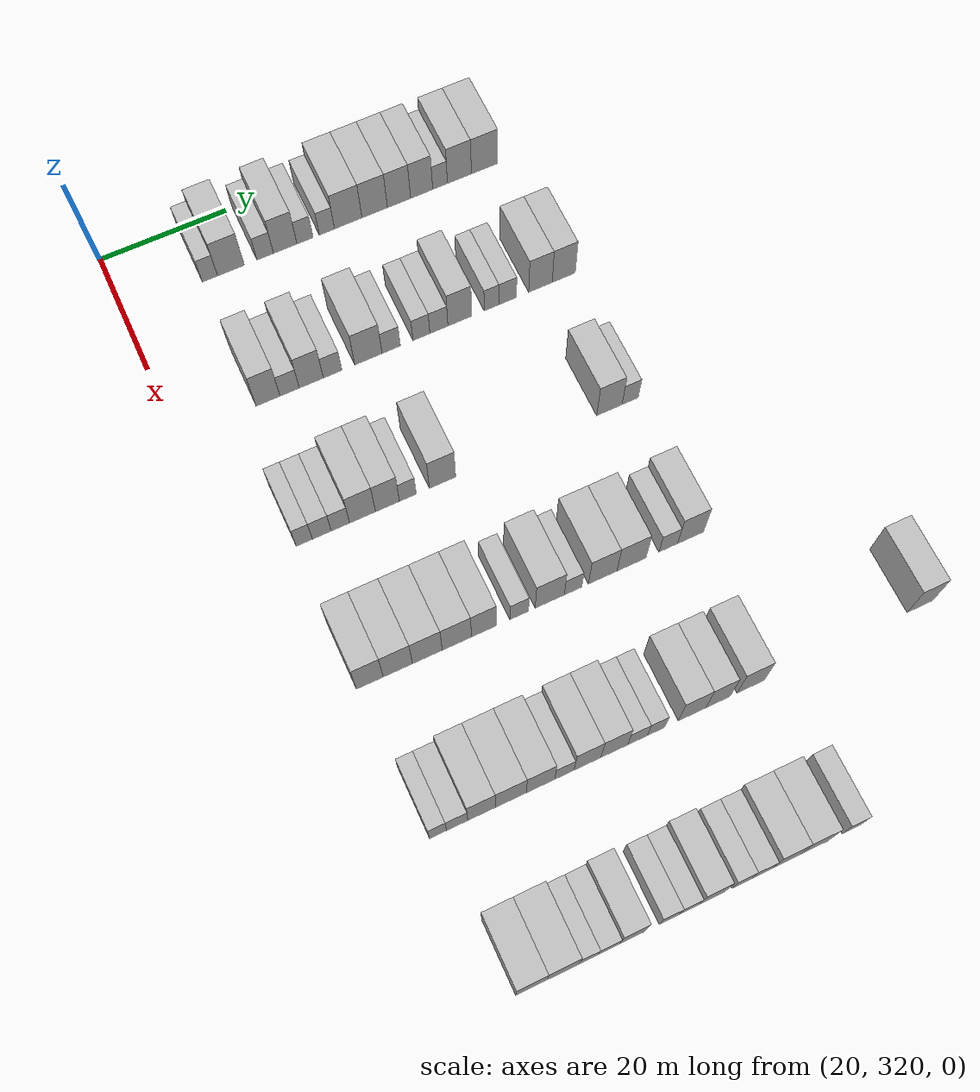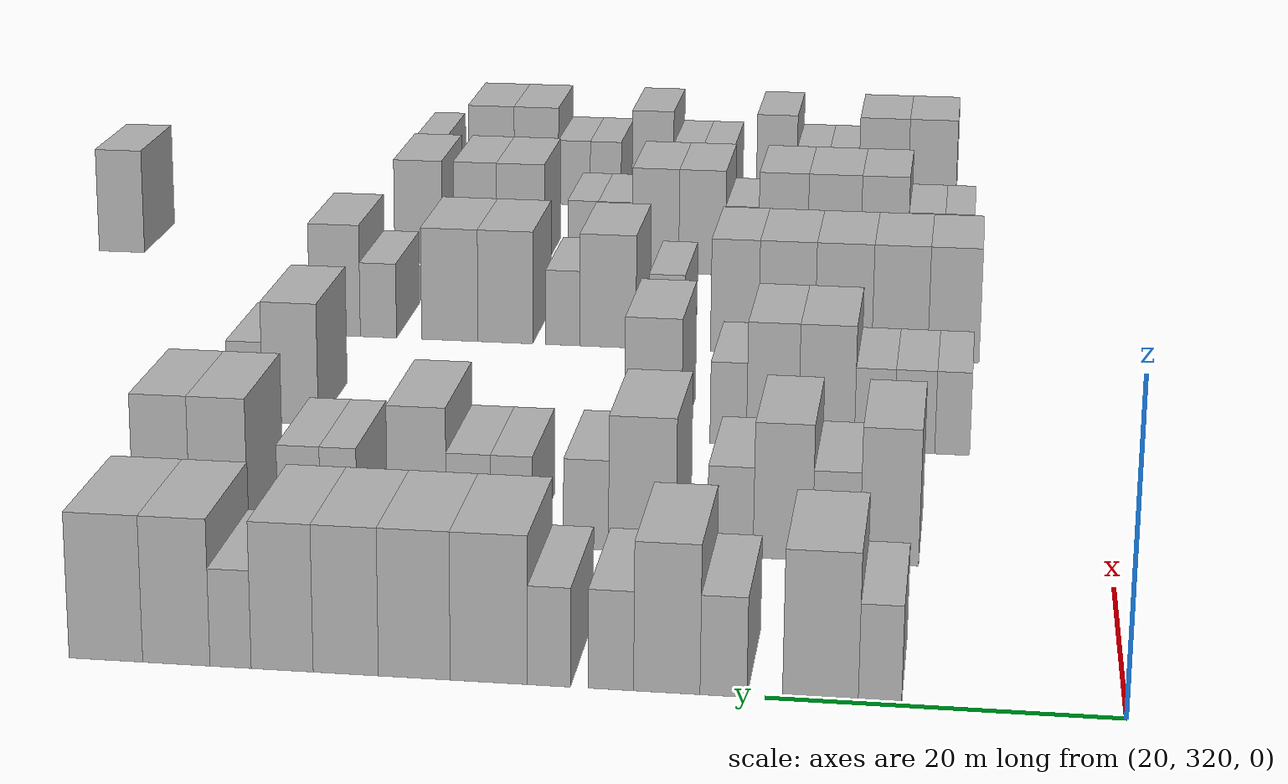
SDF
<sdf version="1.6">
 <world name="default">
  <model name="building_180">
   <static>1</static>
   <pose>25.0000 333.6024 0 0.000000 0.000000 0.000000</pose>
   <link name="link">
    <pose>0 0 3.00 0 0 0</pose>
    <collision name="collision"><geometry><box><size>10.0000 2.4155 6.0000</size></box></geometry></collision>
    <visual name="visual">
     <cast_shadows>0</cast_shadows>
     <geometry><box><size>10.0000 2.4155 6.0000</size></box></geometry>
     <material>
      <script>
       <uri>model://HANNAS_wall/materials/scripts</uri>
       <uri>model://HANNAS_wall/materials/textures</uri>
       <name>vrc/HANNAS_wall</name>
      </script>
     </material>
    </visual>
   </link>
  </model>
  <model name="building_181">
   <static>1</static>
   <pose>25.0000 336.9298 0 0.000000 0.000000 0.000000</pose>
   <link name="link">
    <pose>0 0 4.50 0 0 0</pose>
    <collision name="collision"><geometry><box><size>10.0000 4.2392 9.0000</size></box></geometry></collision>
    <visual name="visual">
     <cast_shadows>0</cast_shadows>
     <geometry><box><size>10.0000 4.2392 9.0000</size></box></geometry>
     <material>
      <script>
       <uri>model://HANNAS_wall/materials/scripts</uri>
       <uri>model://HANNAS_wall/materials/textures</uri>
       <name>vrc/HANNAS_wall</name>
      </script>
     </material>
    </visual>
   </link>
  </model>
  <model name="building_182">
   <static>1</static>
   <pose>25.0000 342.3731 0 0.000000 0.000000 0.000000</pose>
   <link name="link">
    <pose>0 0 3.00 0 0 0</pose>
    <collision name="collision"><geometry><box><size>10.0000 2.6474 6.0000</size></box></geometry></collision>
    <visual name="visual">
     <cast_shadows>0</cast_shadows>
     <geometry><box><size>10.0000 2.6474 6.0000</size></box></geometry>
     <material>
      <script>
       <uri>model://HANNAS_wall/materials/scripts</uri>
       <uri>model://HANNAS_wall/materials/textures</uri>
       <name>vrc/HANNAS_wall</name>
      </script>
     </material>
    </visual>
   </link>
  </model>
  <model name="building_183">
   <static>1</static>
   <pose>25.0000 345.5831 0 0.000000 0.000000 0.000000</pose>
   <link name="link">
    <pose>0 0 4.50 0 0 0</pose>
    <collision name="collision"><geometry><box><size>10.0000 3.7726 9.0000</size></box></geometry></collision>
    <visual name="visual">
     <cast_shadows>0</cast_shadows>
     <geometry><box><size>10.0000 3.7726 9.0000</size></box></geometry>
     <material>
      <script>
       <uri>model://HANNAS_wall/materials/scripts</uri>
       <uri>model://HANNAS_wall/materials/textures</uri>
       <name>vrc/HANNAS_wall</name>
      </script>
     </material>
    </visual>
   </link>
  </model>
  <model name="building_184">
   <static>1</static>
   <pose>25.0000 348.7672 0 0.000000 0.000000 0.000000</pose>
   <link name="link">
    <pose>0 0 3.00 0 0 0</pose>
    <collision name="collision"><geometry><box><size>10.0000 2.5956 6.0000</size></box></geometry></collision>
    <visual name="visual">
     <cast_shadows>0</cast_shadows>
     <geometry><box><size>10.0000 2.5956 6.0000</size></box></geometry>
     <material>
      <script>
       <uri>model://HANNAS_wall/materials/scripts</uri>
       <uri>model://HANNAS_wall/materials/textures</uri>
       <name>vrc/HANNAS_wall</name>
      </script>
     </material>
    </visual>
   </link>
  </model>
  <model name="building_185">
   <static>1</static>
   <pose>25.0000 352.2987 0 0.000000 0.000000 0.000000</pose>
   <link name="link">
    <pose>0 0 3.00 0 0 0</pose>
    <collision name="collision"><geometry><box><size>10.0000 2.4674 6.0000</size></box></geometry></collision>
    <visual name="visual">
     <cast_shadows>0</cast_shadows>
     <geometry><box><size>10.0000 2.4674 6.0000</size></box></geometry>
     <material>
      <script>
       <uri>model://HANNAS_wall/materials/scripts</uri>
       <uri>model://HANNAS_wall/materials/textures</uri>
       <name>vrc/HANNAS_wall</name>
      </script>
     </material>
    </visual>
   </link>
  </model>
  <model name="building_186">
   <static>1</static>
   <pose>25.0000 355.7616 0 0.000000 0.000000 0.000000</pose>
   <link name="link">
    <pose>0 0 4.50 0 0 0</pose>
    <collision name="collision"><geometry><box><size>10.0000 4.4584 9.0000</size></box></geometry></collision>
    <visual name="visual">
     <cast_shadows>0</cast_shadows>
     <geometry><box><size>10.0000 4.4584 9.0000</size></box></geometry>
     <material>
      <script>
       <uri>model://HANNAS_wall/materials/scripts</uri>
       <uri>model://HANNAS_wall/materials/textures</uri>
       <name>vrc/HANNAS_wall</name>
      </script>
     </material>
    </visual>
   </link>
  </model>
  <model name="building_187">
   <static>1</static>
   <pose>25.0000 360.0774 0 0.000000 0.000000 0.000000</pose>
   <link name="link">
    <pose>0 0 4.50 0 0 0</pose>
    <collision name="collision"><geometry><box><size>10.0000 4.1732 9.0000</size></box></geometry></collision>
    <visual name="visual">
     <cast_shadows>0</cast_shadows>
     <geometry><box><size>10.0000 4.1732 9.0000</size></box></geometry>
     <material>
      <script>
       <uri>model://HANNAS_wall/materials/scripts</uri>
       <uri>model://HANNAS_wall/materials/textures</uri>
       <name>vrc/HANNAS_wall</name>
      </script>
     </material>
    </visual>
   </link>
  </model>
  <model name="building_188">
   <static>1</static>
   <pose>25.0000 364.0719 0 0.000000 0.000000 0.000000</pose>
   <link name="link">
    <pose>0 0 4.50 0 0 0</pose>
    <collision name="collision"><geometry><box><size>10.0000 3.8158 9.0000</size></box></geometry></collision>
    <visual name="visual">
     <cast_shadows>0</cast_shadows>
     <geometry><box><size>10.0000 3.8158 9.0000</size></box></geometry>
     <material>
      <script>
       <uri>model://HANNAS_wall/materials/scripts</uri>
       <uri>model://HANNAS_wall/materials/textures</uri>
       <name>vrc/HANNAS_wall</name>
      </script>
     </material>
    </visual>
   </link>
  </model>
  <model name="building_189">
   <static>1</static>
   <pose>25.0000 367.8033 0 0.000000 0.000000 0.000000</pose>
   <link name="link">
    <pose>0 0 4.50 0 0 0</pose>
    <collision name="collision"><geometry><box><size>10.0000 3.6472 9.0000</size></box></geometry></collision>
    <visual name="visual">
     <cast_shadows>0</cast_shadows>
     <geometry><box><size>10.0000 3.6472 9.0000</size></box></geometry>
     <material>
      <script>
       <uri>model://HANNAS_wall/materials/scripts</uri>
       <uri>model://HANNAS_wall/materials/textures</uri>
       <name>vrc/HANNAS_wall</name>
      </script>
     </material>
    </visual>
   </link>
  </model>
  <model name="building_190">
   <static>1</static>
   <pose>25.0000 370.8464 0 0.000000 0.000000 0.000000</pose>
   <link name="link">
    <pose>0 0 3.00 0 0 0</pose>
    <collision name="collision"><geometry><box><size>10.0000 2.4390 6.0000</size></box></geometry></collision>
    <visual name="visual">
     <cast_shadows>0</cast_shadows>
     <geometry><box><size>10.0000 2.4390 6.0000</size></box></geometry>
     <material>
      <script>
       <uri>model://HANNAS_wall/materials/scripts</uri>
       <uri>model://HANNAS_wall/materials/textures</uri>
       <name>vrc/HANNAS_wall</name>
      </script>
     </material>
    </visual>
   </link>
  </model>
  <model name="building_191">
   <static>1</static>
   <pose>25.0000 374.0629 0 0.000000 0.000000 0.000000</pose>
   <link name="link">
    <pose>0 0 4.50 0 0 0</pose>
    <collision name="collision"><geometry><box><size>10.0000 3.9939 9.0000</size></box></geometry></collision>
    <visual name="visual">
     <cast_shadows>0</cast_shadows>
     <geometry><box><size>10.0000 3.9939 9.0000</size></box></geometry>
     <material>
      <script>
       <uri>model://HANNAS_wall/materials/scripts</uri>
       <uri>model://HANNAS_wall/materials/textures</uri>
       <name>vrc/HANNAS_wall</name>
      </script>
     </material>
    </visual>
   </link>
  </model>
  <model name="building_192">
   <static>1</static>
   <pose>25.0000 378.2592 0 0.000000 0.000000 0.000000</pose>
   <link name="link">
    <pose>0 0 4.50 0 0 0</pose>
    <collision name="collision"><geometry><box><size>10.0000 4.3989 9.0000</size></box></geometry></collision>
    <visual name="visual">
     <cast_shadows>0</cast_shadows>
     <geometry><box><size>10.0000 4.3989 9.0000</size></box></geometry>
     <material>
      <script>
       <uri>model://HANNAS_wall/materials/scripts</uri>
       <uri>model://HANNAS_wall/materials/textures</uri>
       <name>vrc/HANNAS_wall</name>
      </script>
     </material>
    </visual>
   </link>
  </model>
  <model name="building_371">
   <static>1</static>
   <pose>47.0000 333.9066 0 0.000000 0.000000 0.000000</pose>
   <link name="link">
    <pose>0 0 4.50 0 0 0</pose>
    <collision name="collision"><geometry><box><size>10.0000 3.6899 9.0000</size></box></geometry></collision>
    <visual name="visual">
     <cast_shadows>0</cast_shadows>
     <geometry><box><size>10.0000 3.6899 9.0000</size></box></geometry>
     <material>
      <script>
       <uri>model://HANNAS_wall/materials/scripts</uri>
       <uri>model://HANNAS_wall/materials/textures</uri>
       <name>vrc/HANNAS_wall</name>
      </script>
     </material>
    </visual>
   </link>
  </model>
  <model name="building_372">
   <static>1</static>
   <pose>47.0000 337.2403 0 0.000000 0.000000 0.000000</pose>
   <link name="link">
    <pose>0 0 3.00 0 0 0</pose>
    <collision name="collision"><geometry><box><size>10.0000 2.9776 6.0000</size></box></geometry></collision>
    <visual name="visual">
     <cast_shadows>0</cast_shadows>
     <geometry><box><size>10.0000 2.9776 6.0000</size></box></geometry>
     <material>
      <script>
       <uri>model://HANNAS_wall/materials/scripts</uri>
       <uri>model://HANNAS_wall/materials/textures</uri>
       <name>vrc/HANNAS_wall</name>
      </script>
     </material>
    </visual>
   </link>
  </model>
  <model name="building_373">
   <static>1</static>
   <pose>47.0000 340.5946 0 0.000000 0.000000 0.000000</pose>
   <link name="link">
    <pose>0 0 4.50 0 0 0</pose>
    <collision name="collision"><geometry><box><size>10.0000 3.7309 9.0000</size></box></geometry></collision>
    <visual name="visual">
     <cast_shadows>0</cast_shadows>
     <geometry><box><size>10.0000 3.7309 9.0000</size></box></geometry>
     <material>
      <script>
       <uri>model://HANNAS_wall/materials/scripts</uri>
       <uri>model://HANNAS_wall/materials/textures</uri>
       <name>vrc/HANNAS_wall</name>
      </script>
     </material>
    </visual>
   </link>
  </model>
  <model name="building_374">
   <static>1</static>
   <pose>47.0000 343.9089 0 0.000000 0.000000 0.000000</pose>
   <link name="link">
    <pose>0 0 3.00 0 0 0</pose>
    <collision name="collision"><geometry><box><size>10.0000 2.8978 6.0000</size></box></geometry></collision>
    <visual name="visual">
     <cast_shadows>0</cast_shadows>
     <geometry><box><size>10.0000 2.8978 6.0000</size></box></geometry>
     <material>
      <script>
       <uri>model://HANNAS_wall/materials/scripts</uri>
       <uri>model://HANNAS_wall/materials/textures</uri>
       <name>vrc/HANNAS_wall</name>
      </script>
     </material>
    </visual>
   </link>
  </model>
  <model name="building_375">
   <static>1</static>
   <pose>47.0000 349.5114 0 0.000000 0.000000 0.000000</pose>
   <link name="link">
    <pose>0 0 4.50 0 0 0</pose>
    <collision name="collision"><geometry><box><size>10.0000 4.3072 9.0000</size></box></geometry></collision>
    <visual name="visual">
     <cast_shadows>0</cast_shadows>
     <geometry><box><size>10.0000 4.3072 9.0000</size></box></geometry>
     <material>
      <script>
       <uri>model://HANNAS_wall/materials/scripts</uri>
       <uri>model://HANNAS_wall/materials/textures</uri>
       <name>vrc/HANNAS_wall</name>
      </script>
     </material>
    </visual>
   </link>
  </model>
  <model name="building_376">
   <static>1</static>
   <pose>47.0000 353.1092 0 0.000000 0.000000 0.000000</pose>
   <link name="link">
    <pose>0 0 3.00 0 0 0</pose>
    <collision name="collision"><geometry><box><size>10.0000 2.8883 6.0000</size></box></geometry></collision>
    <visual name="visual">
     <cast_shadows>0</cast_shadows>
     <geometry><box><size>10.0000 2.8883 6.0000</size></box></geometry>
     <material>
      <script>
       <uri>model://HANNAS_wall/materials/scripts</uri>
       <uri>model://HANNAS_wall/materials/textures</uri>
       <name>vrc/HANNAS_wall</name>
      </script>
     </material>
    </visual>
   </link>
  </model>
  <model name="building_377">
   <static>1</static>
   <pose>47.0000 357.9000 0 0.000000 0.000000 0.000000</pose>
   <link name="link">
    <pose>0 0 3.00 0 0 0</pose>
    <collision name="collision"><geometry><box><size>10.0000 2.6933 6.0000</size></box></geometry></collision>
    <visual name="visual">
     <cast_shadows>0</cast_shadows>
     <geometry><box><size>10.0000 2.6933 6.0000</size></box></geometry>
     <material>
      <script>
       <uri>model://HANNAS_wall/materials/scripts</uri>
       <uri>model://HANNAS_wall/materials/textures</uri>
       <name>vrc/HANNAS_wall</name>
      </script>
     </material>
    </visual>
   </link>
  </model>
  <model name="building_378">
   <static>1</static>
   <pose>47.0000 360.6864 0 0.000000 0.000000 0.000000</pose>
   <link name="link">
    <pose>0 0 3.00 0 0 0</pose>
    <collision name="collision"><geometry><box><size>10.0000 2.8795 6.0000</size></box></geometry></collision>
    <visual name="visual">
     <cast_shadows>0</cast_shadows>
     <geometry><box><size>10.0000 2.8795 6.0000</size></box></geometry>
     <material>
      <script>
       <uri>model://HANNAS_wall/materials/scripts</uri>
       <uri>model://HANNAS_wall/materials/textures</uri>
       <name>vrc/HANNAS_wall</name>
      </script>
     </material>
    </visual>
   </link>
  </model>
  <model name="building_379">
   <static>1</static>
   <pose>47.0000 364.0399 0 0.000000 0.000000 0.000000</pose>
   <link name="link">
    <pose>0 0 4.50 0 0 0</pose>
    <collision name="collision"><geometry><box><size>10.0000 3.8274 9.0000</size></box></geometry></collision>
    <visual name="visual">
     <cast_shadows>0</cast_shadows>
     <geometry><box><size>10.0000 3.8274 9.0000</size></box></geometry>
     <material>
      <script>
       <uri>model://HANNAS_wall/materials/scripts</uri>
       <uri>model://HANNAS_wall/materials/textures</uri>
       <name>vrc/HANNAS_wall</name>
      </script>
     </material>
    </visual>
   </link>
  </model>
  <model name="building_380">
   <static>1</static>
   <pose>47.0000 369.1557 0 0.000000 0.000000 0.000000</pose>
   <link name="link">
    <pose>0 0 3.00 0 0 0</pose>
    <collision name="collision"><geometry><box><size>10.0000 2.4041 6.0000</size></box></geometry></collision>
    <visual name="visual">
     <cast_shadows>0</cast_shadows>
     <geometry><box><size>10.0000 2.4041 6.0000</size></box></geometry>
     <material>
      <script>
       <uri>model://HANNAS_wall/materials/scripts</uri>
       <uri>model://HANNAS_wall/materials/textures</uri>
       <name>vrc/HANNAS_wall</name>
      </script>
     </material>
    </visual>
   </link>
  </model>
  <model name="building_381">
   <static>1</static>
   <pose>47.0000 371.7620 0 0.000000 0.000000 0.000000</pose>
   <link name="link">
    <pose>0 0 3.00 0 0 0</pose>
    <collision name="collision"><geometry><box><size>10.0000 2.8084 6.0000</size></box></geometry></collision>
    <visual name="visual">
     <cast_shadows>0</cast_shadows>
     <geometry><box><size>10.0000 2.8084 6.0000</size></box></geometry>
     <material>
      <script>
       <uri>model://HANNAS_wall/materials/scripts</uri>
       <uri>model://HANNAS_wall/materials/textures</uri>
       <name>vrc/HANNAS_wall</name>
      </script>
     </material>
    </visual>
   </link>
  </model>
  <model name="building_382">
   <static>1</static>
   <pose>47.0000 377.0880 0 0.000000 0.000000 0.000000</pose>
   <link name="link">
    <pose>0 0 4.50 0 0 0</pose>
    <collision name="collision"><geometry><box><size>10.0000 3.8436 9.0000</size></box></geometry></collision>
    <visual name="visual">
     <cast_shadows>0</cast_shadows>
     <geometry><box><size>10.0000 3.8436 9.0000</size></box></geometry>
     <material>
      <script>
       <uri>model://HANNAS_wall/materials/scripts</uri>
       <uri>model://HANNAS_wall/materials/textures</uri>
       <name>vrc/HANNAS_wall</name>
      </script>
     </material>
    </visual>
   </link>
  </model>
  <model name="building_383">
   <static>1</static>
   <pose>47.0000 380.8971 0 0.000000 0.000000 0.000000</pose>
   <link name="link">
    <pose>0 0 4.50 0 0 0</pose>
    <collision name="collision"><geometry><box><size>10.0000 3.7747 9.0000</size></box></geometry></collision>
    <visual name="visual">
     <cast_shadows>0</cast_shadows>
     <geometry><box><size>10.0000 3.7747 9.0000</size></box></geometry>
     <material>
      <script>
       <uri>model://HANNAS_wall/materials/scripts</uri>
       <uri>model://HANNAS_wall/materials/textures</uri>
       <name>vrc/HANNAS_wall</name>
      </script>
     </material>
    </visual>
   </link>
  </model>
  <model name="building_556">
   <static>1</static>
   <pose>69.0000 330.3524 0 0.000000 0.000000 0.000000</pose>
   <link name="link">
    <pose>0 0 3.00 0 0 0</pose>
    <collision name="collision"><geometry><box><size>10.0000 2.4080 6.0000</size></box></geometry></collision>
    <visual name="visual">
     <cast_shadows>0</cast_shadows>
     <geometry><box><size>10.0000 2.4080 6.0000</size></box></geometry>
     <material>
      <script>
       <uri>model://HANNAS_wall/materials/scripts</uri>
       <uri>model://HANNAS_wall/materials/textures</uri>
       <name>vrc/HANNAS_wall</name>
      </script>
     </material>
    </visual>
   </link>
  </model>
  <model name="building_557">
   <static>1</static>
   <pose>69.0000 332.9718 0 0.000000 0.000000 0.000000</pose>
   <link name="link">
    <pose>0 0 3.00 0 0 0</pose>
    <collision name="collision"><geometry><box><size>10.0000 2.8309 6.0000</size></box></geometry></collision>
    <visual name="visual">
     <cast_shadows>0</cast_shadows>
     <geometry><box><size>10.0000 2.8309 6.0000</size></box></geometry>
     <material>
      <script>
       <uri>model://HANNAS_wall/materials/scripts</uri>
       <uri>model://HANNAS_wall/materials/textures</uri>
       <name>vrc/HANNAS_wall</name>
      </script>
     </material>
    </visual>
   </link>
  </model>
  <model name="building_558">
   <static>1</static>
   <pose>69.0000 335.7652 0 0.000000 0.000000 0.000000</pose>
   <link name="link">
    <pose>0 0 3.00 0 0 0</pose>
    <collision name="collision"><geometry><box><size>10.0000 2.7557 6.0000</size></box></geometry></collision>
    <visual name="visual">
     <cast_shadows>0</cast_shadows>
     <geometry><box><size>10.0000 2.7557 6.0000</size></box></geometry>
     <material>
      <script>
       <uri>model://HANNAS_wall/materials/scripts</uri>
       <uri>model://HANNAS_wall/materials/textures</uri>
       <name>vrc/HANNAS_wall</name>
      </script>
     </material>
    </visual>
   </link>
  </model>
  <model name="building_559">
   <static>1</static>
   <pose>69.0000 339.0975 0 0.000000 0.000000 0.000000</pose>
   <link name="link">
    <pose>0 0 4.50 0 0 0</pose>
    <collision name="collision"><geometry><box><size>10.0000 3.9089 9.0000</size></box></geometry></collision>
    <visual name="visual">
     <cast_shadows>0</cast_shadows>
     <geometry><box><size>10.0000 3.9089 9.0000</size></box></geometry>
     <material>
      <script>
       <uri>model://HANNAS_wall/materials/scripts</uri>
       <uri>model://HANNAS_wall/materials/textures</uri>
       <name>vrc/HANNAS_wall</name>
      </script>
     </material>
    </visual>
   </link>
  </model>
  <model name="building_560">
   <static>1</static>
   <pose>69.0000 342.8680 0 0.000000 0.000000 0.000000</pose>
   <link name="link">
    <pose>0 0 4.50 0 0 0</pose>
    <collision name="collision"><geometry><box><size>10.0000 3.6320 9.0000</size></box></geometry></collision>
    <visual name="visual">
     <cast_shadows>0</cast_shadows>
     <geometry><box><size>10.0000 3.6320 9.0000</size></box></geometry>
     <material>
      <script>
       <uri>model://HANNAS_wall/materials/scripts</uri>
       <uri>model://HANNAS_wall/materials/textures</uri>
       <name>vrc/HANNAS_wall</name>
      </script>
     </material>
    </visual>
   </link>
  </model>
  <model name="building_561">
   <static>1</static>
   <pose>69.0000 345.9640 0 0.000000 0.000000 0.000000</pose>
   <link name="link">
    <pose>0 0 3.00 0 0 0</pose>
    <collision name="collision"><geometry><box><size>10.0000 2.5600 6.0000</size></box></geometry></collision>
    <visual name="visual">
     <cast_shadows>0</cast_shadows>
     <geometry><box><size>10.0000 2.5600 6.0000</size></box></geometry>
     <material>
      <script>
       <uri>model://HANNAS_wall/materials/scripts</uri>
       <uri>model://HANNAS_wall/materials/textures</uri>
       <name>vrc/HANNAS_wall</name>
      </script>
     </material>
    </visual>
   </link>
  </model>
  <model name="building_562">
   <static>1</static>
   <pose>69.0000 351.2644 0 0.000000 0.000000 0.000000</pose>
   <link name="link">
    <pose>0 0 4.50 0 0 0</pose>
    <collision name="collision"><geometry><box><size>10.0000 4.0408 9.0000</size></box></geometry></collision>
    <visual name="visual">
     <cast_shadows>0</cast_shadows>
     <geometry><box><size>10.0000 4.0408 9.0000</size></box></geometry>
     <material>
      <script>
       <uri>model://HANNAS_wall/materials/scripts</uri>
       <uri>model://HANNAS_wall/materials/textures</uri>
       <name>vrc/HANNAS_wall</name>
      </script>
     </material>
    </visual>
   </link>
  </model>
  <model name="building_563">
   <static>1</static>
   <pose>69.0000 377.3770 0 0.000000 0.000000 0.000000</pose>
   <link name="link">
    <pose>0 0 4.50 0 0 0</pose>
    <collision name="collision"><geometry><box><size>10.0000 4.0615 9.0000</size></box></geometry></collision>
    <visual name="visual">
     <cast_shadows>0</cast_shadows>
     <geometry><box><size>10.0000 4.0615 9.0000</size></box></geometry>
     <material>
      <script>
       <uri>model://HANNAS_wall/materials/scripts</uri>
       <uri>model://HANNAS_wall/materials/textures</uri>
       <name>vrc/HANNAS_wall</name>
      </script>
     </material>
    </visual>
   </link>
  </model>
  <model name="building_564">
   <static>1</static>
   <pose>69.0000 380.7011 0 0.000000 0.000000 0.000000</pose>
   <link name="link">
    <pose>0 0 3.00 0 0 0</pose>
    <collision name="collision"><geometry><box><size>10.0000 2.5866 6.0000</size></box></geometry></collision>
    <visual name="visual">
     <cast_shadows>0</cast_shadows>
     <geometry><box><size>10.0000 2.5866 6.0000</size></box></geometry>
     <material>
      <script>
       <uri>model://HANNAS_wall/materials/scripts</uri>
       <uri>model://HANNAS_wall/materials/textures</uri>
       <name>vrc/HANNAS_wall</name>
      </script>
     </material>
    </visual>
   </link>
  </model>
  <model name="building_736">
   <static>1</static>
   <pose>91.0000 330.6486 0 0.000000 0.000000 0.000000</pose>
   <link name="link">
    <pose>0 0 4.50 0 0 0</pose>
    <collision name="collision"><geometry><box><size>10.0000 3.8980 9.0000</size></box></geometry></collision>
    <visual name="visual">
     <cast_shadows>0</cast_shadows>
     <geometry><box><size>10.0000 3.8980 9.0000</size></box></geometry>
     <material>
      <script>
       <uri>model://HANNAS_wall/materials/scripts</uri>
       <uri>model://HANNAS_wall/materials/textures</uri>
       <name>vrc/HANNAS_wall</name>
      </script>
     </material>
    </visual>
   </link>
  </model>
  <model name="building_737">
   <static>1</static>
   <pose>91.0000 334.7311 0 0.000000 0.000000 0.000000</pose>
   <link name="link">
    <pose>0 0 4.50 0 0 0</pose>
    <collision name="collision"><geometry><box><size>10.0000 4.2670 9.0000</size></box></geometry></collision>
    <visual name="visual">
     <cast_shadows>0</cast_shadows>
     <geometry><box><size>10.0000 4.2670 9.0000</size></box></geometry>
     <material>
      <script>
       <uri>model://HANNAS_wall/materials/scripts</uri>
       <uri>model://HANNAS_wall/materials/textures</uri>
       <name>vrc/HANNAS_wall</name>
      </script>
     </material>
    </visual>
   </link>
  </model>
  <model name="building_738">
   <static>1</static>
   <pose>91.0000 339.0450 0 0.000000 0.000000 0.000000</pose>
   <link name="link">
    <pose>0 0 4.50 0 0 0</pose>
    <collision name="collision"><geometry><box><size>10.0000 4.3608 9.0000</size></box></geometry></collision>
    <visual name="visual">
     <cast_shadows>0</cast_shadows>
     <geometry><box><size>10.0000 4.3608 9.0000</size></box></geometry>
     <material>
      <script>
       <uri>model://HANNAS_wall/materials/scripts</uri>
       <uri>model://HANNAS_wall/materials/textures</uri>
       <name>vrc/HANNAS_wall</name>
      </script>
     </material>
    </visual>
   </link>
  </model>
  <model name="building_739">
   <static>1</static>
   <pose>91.0000 343.3921 0 0.000000 0.000000 0.000000</pose>
   <link name="link">
    <pose>0 0 4.50 0 0 0</pose>
    <collision name="collision"><geometry><box><size>10.0000 4.3335 9.0000</size></box></geometry></collision>
    <visual name="visual">
     <cast_shadows>0</cast_shadows>
     <geometry><box><size>10.0000 4.3335 9.0000</size></box></geometry>
     <material>
      <script>
       <uri>model://HANNAS_wall/materials/scripts</uri>
       <uri>model://HANNAS_wall/materials/textures</uri>
       <name>vrc/HANNAS_wall</name>
      </script>
     </material>
    </visual>
   </link>
  </model>
  <model name="building_740">
   <static>1</static>
   <pose>91.0000 347.4095 0 0.000000 0.000000 0.000000</pose>
   <link name="link">
    <pose>0 0 4.50 0 0 0</pose>
    <collision name="collision"><geometry><box><size>10.0000 3.7014 9.0000</size></box></geometry></collision>
    <visual name="visual">
     <cast_shadows>0</cast_shadows>
     <geometry><box><size>10.0000 3.7014 9.0000</size></box></geometry>
     <material>
      <script>
       <uri>model://HANNAS_wall/materials/scripts</uri>
       <uri>model://HANNAS_wall/materials/textures</uri>
       <name>vrc/HANNAS_wall</name>
      </script>
     </material>
    </visual>
   </link>
  </model>
  <model name="building_741">
   <static>1</static>
   <pose>91.0000 352.6573 0 0.000000 0.000000 0.000000</pose>
   <link name="link">
    <pose>0 0 3.00 0 0 0</pose>
    <collision name="collision"><geometry><box><size>10.0000 2.7942 6.0000</size></box></geometry></collision>
    <visual name="visual">
     <cast_shadows>0</cast_shadows>
     <geometry><box><size>10.0000 2.7942 6.0000</size></box></geometry>
     <material>
      <script>
       <uri>model://HANNAS_wall/materials/scripts</uri>
       <uri>model://HANNAS_wall/materials/textures</uri>
       <name>vrc/HANNAS_wall</name>
      </script>
     </material>
    </visual>
   </link>
  </model>
  <model name="building_742">
   <static>1</static>
   <pose>91.0000 357.2522 0 0.000000 0.000000 0.000000</pose>
   <link name="link">
    <pose>0 0 4.50 0 0 0</pose>
    <collision name="collision"><geometry><box><size>10.0000 4.3955 9.0000</size></box></geometry></collision>
    <visual name="visual">
     <cast_shadows>0</cast_shadows>
     <geometry><box><size>10.0000 4.3955 9.0000</size></box></geometry>
     <material>
      <script>
       <uri>model://HANNAS_wall/materials/scripts</uri>
       <uri>model://HANNAS_wall/materials/textures</uri>
       <name>vrc/HANNAS_wall</name>
      </script>
     </material>
    </visual>
   </link>
  </model>
  <model name="building_743">
   <static>1</static>
   <pose>91.0000 360.7822 0 0.000000 0.000000 0.000000</pose>
   <link name="link">
    <pose>0 0 3.00 0 0 0</pose>
    <collision name="collision"><geometry><box><size>10.0000 2.6646 6.0000</size></box></geometry></collision>
    <visual name="visual">
     <cast_shadows>0</cast_shadows>
     <geometry><box><size>10.0000 2.6646 6.0000</size></box></geometry>
     <material>
      <script>
       <uri>model://HANNAS_wall/materials/scripts</uri>
       <uri>model://HANNAS_wall/materials/textures</uri>
       <name>vrc/HANNAS_wall</name>
      </script>
     </material>
    </visual>
   </link>
  </model>
  <model name="building_744">
   <static>1</static>
   <pose>91.0000 365.2876 0 0.000000 0.000000 0.000000</pose>
   <link name="link">
    <pose>0 0 4.50 0 0 0</pose>
    <collision name="collision"><geometry><box><size>10.0000 4.3463 9.0000</size></box></geometry></collision>
    <visual name="visual">
     <cast_shadows>0</cast_shadows>
     <geometry><box><size>10.0000 4.3463 9.0000</size></box></geometry>
     <material>
      <script>
       <uri>model://HANNAS_wall/materials/scripts</uri>
       <uri>model://HANNAS_wall/materials/textures</uri>
       <name>vrc/HANNAS_wall</name>
      </script>
     </material>
    </visual>
   </link>
  </model>
  <model name="building_745">
   <static>1</static>
   <pose>91.0000 369.6939 0 0.000000 0.000000 0.000000</pose>
   <link name="link">
    <pose>0 0 4.50 0 0 0</pose>
    <collision name="collision"><geometry><box><size>10.0000 4.4661 9.0000</size></box></geometry></collision>
    <visual name="visual">
     <cast_shadows>0</cast_shadows>
     <geometry><box><size>10.0000 4.4661 9.0000</size></box></geometry>
     <material>
      <script>
       <uri>model://HANNAS_wall/materials/scripts</uri>
       <uri>model://HANNAS_wall/materials/textures</uri>
       <name>vrc/HANNAS_wall</name>
      </script>
     </material>
    </visual>
   </link>
  </model>
  <model name="building_746">
   <static>1</static>
   <pose>91.0000 375.3717 0 0.000000 0.000000 0.000000</pose>
   <link name="link">
    <pose>0 0 3.00 0 0 0</pose>
    <collision name="collision"><geometry><box><size>10.0000 2.8896 6.0000</size></box></geometry></collision>
    <visual name="visual">
     <cast_shadows>0</cast_shadows>
     <geometry><box><size>10.0000 2.8896 6.0000</size></box></geometry>
     <material>
      <script>
       <uri>model://HANNAS_wall/materials/scripts</uri>
       <uri>model://HANNAS_wall/materials/textures</uri>
       <name>vrc/HANNAS_wall</name>
      </script>
     </material>
    </visual>
   </link>
  </model>
  <model name="building_747">
   <static>1</static>
   <pose>91.0000 378.8373 0 0.000000 0.000000 0.000000</pose>
   <link name="link">
    <pose>0 0 4.50 0 0 0</pose>
    <collision name="collision"><geometry><box><size>10.0000 4.0417 9.0000</size></box></geometry></collision>
    <visual name="visual">
     <cast_shadows>0</cast_shadows>
     <geometry><box><size>10.0000 4.0417 9.0000</size></box></geometry>
     <material>
      <script>
       <uri>model://HANNAS_wall/materials/scripts</uri>
       <uri>model://HANNAS_wall/materials/textures</uri>
       <name>vrc/HANNAS_wall</name>
      </script>
     </material>
    </visual>
   </link>
  </model>
  <model name="building_922">
   <static>1</static>
   <pose>113.0000 330.6518 0 0.000000 0.000000 0.000000</pose>
   <link name="link">
    <pose>0 0 3.00 0 0 0</pose>
    <collision name="collision"><geometry><box><size>10.0000 2.4028 6.0000</size></box></geometry></collision>
    <visual name="visual">
     <cast_shadows>0</cast_shadows>
     <geometry><box><size>10.0000 2.4028 6.0000</size></box></geometry>
     <material>
      <script>
       <uri>model://HANNAS_wall/materials/scripts</uri>
       <uri>model://HANNAS_wall/materials/textures</uri>
       <name>vrc/HANNAS_wall</name>
      </script>
     </material>
    </visual>
   </link>
  </model>
  <model name="building_923">
   <static>1</static>
   <pose>113.0000 333.3509 0 0.000000 0.000000 0.000000</pose>
   <link name="link">
    <pose>0 0 3.00 0 0 0</pose>
    <collision name="collision"><geometry><box><size>10.0000 2.9953 6.0000</size></box></geometry></collision>
    <visual name="visual">
     <cast_shadows>0</cast_shadows>
     <geometry><box><size>10.0000 2.9953 6.0000</size></box></geometry>
     <material>
      <script>
       <uri>model://HANNAS_wall/materials/scripts</uri>
       <uri>model://HANNAS_wall/materials/textures</uri>
       <name>vrc/HANNAS_wall</name>
      </script>
     </material>
    </visual>
   </link>
  </model>
  <model name="building_924">
   <static>1</static>
   <pose>113.0000 336.8112 0 0.000000 0.000000 0.000000</pose>
   <link name="link">
    <pose>0 0 4.50 0 0 0</pose>
    <collision name="collision"><geometry><box><size>10.0000 3.9254 9.0000</size></box></geometry></collision>
    <visual name="visual">
     <cast_shadows>0</cast_shadows>
     <geometry><box><size>10.0000 3.9254 9.0000</size></box></geometry>
     <material>
      <script>
       <uri>model://HANNAS_wall/materials/scripts</uri>
       <uri>model://HANNAS_wall/materials/textures</uri>
       <name>vrc/HANNAS_wall</name>
      </script>
     </material>
    </visual>
   </link>
  </model>
  <model name="building_925">
   <static>1</static>
   <pose>113.0000 340.9833 0 0.000000 0.000000 0.000000</pose>
   <link name="link">
    <pose>0 0 4.50 0 0 0</pose>
    <collision name="collision"><geometry><box><size>10.0000 4.4187 9.0000</size></box></geometry></collision>
    <visual name="visual">
     <cast_shadows>0</cast_shadows>
     <geometry><box><size>10.0000 4.4187 9.0000</size></box></geometry>
     <material>
      <script>
       <uri>model://HANNAS_wall/materials/scripts</uri>
       <uri>model://HANNAS_wall/materials/textures</uri>
       <name>vrc/HANNAS_wall</name>
      </script>
     </material>
    </visual>
   </link>
  </model>
  <model name="building_926">
   <static>1</static>
   <pose>113.0000 345.2474 0 0.000000 0.000000 0.000000</pose>
   <link name="link">
    <pose>0 0 4.50 0 0 0</pose>
    <collision name="collision"><geometry><box><size>10.0000 4.1095 9.0000</size></box></geometry></collision>
    <visual name="visual">
     <cast_shadows>0</cast_shadows>
     <geometry><box><size>10.0000 4.1095 9.0000</size></box></geometry>
     <material>
      <script>
       <uri>model://HANNAS_wall/materials/scripts</uri>
       <uri>model://HANNAS_wall/materials/textures</uri>
       <name>vrc/HANNAS_wall</name>
      </script>
     </material>
    </visual>
   </link>
  </model>
  <model name="building_927">
   <static>1</static>
   <pose>113.0000 348.6913 0 0.000000 0.000000 0.000000</pose>
   <link name="link">
    <pose>0 0 3.00 0 0 0</pose>
    <collision name="collision"><geometry><box><size>10.0000 2.7783 6.0000</size></box></geometry></collision>
    <visual name="visual">
     <cast_shadows>0</cast_shadows>
     <geometry><box><size>10.0000 2.7783 6.0000</size></box></geometry>
     <material>
      <script>
       <uri>model://HANNAS_wall/materials/scripts</uri>
       <uri>model://HANNAS_wall/materials/textures</uri>
       <name>vrc/HANNAS_wall</name>
      </script>
     </material>
    </visual>
   </link>
  </model>
  <model name="building_928">
   <static>1</static>
   <pose>113.0000 352.0399 0 0.000000 0.000000 0.000000</pose>
   <link name="link">
    <pose>0 0 4.50 0 0 0</pose>
    <collision name="collision"><geometry><box><size>10.0000 3.9187 9.0000</size></box></geometry></collision>
    <visual name="visual">
     <cast_shadows>0</cast_shadows>
     <geometry><box><size>10.0000 3.9187 9.0000</size></box></geometry>
     <material>
      <script>
       <uri>model://HANNAS_wall/materials/scripts</uri>
       <uri>model://HANNAS_wall/materials/textures</uri>
       <name>vrc/HANNAS_wall</name>
      </script>
     </material>
    </visual>
   </link>
  </model>
  <model name="building_929">
   <static>1</static>
   <pose>113.0000 355.9717 0 0.000000 0.000000 0.000000</pose>
   <link name="link">
    <pose>0 0 4.50 0 0 0</pose>
    <collision name="collision"><geometry><box><size>10.0000 3.9450 9.0000</size></box></geometry></collision>
    <visual name="visual">
     <cast_shadows>0</cast_shadows>
     <geometry><box><size>10.0000 3.9450 9.0000</size></box></geometry>
     <material>
      <script>
       <uri>model://HANNAS_wall/materials/scripts</uri>
       <uri>model://HANNAS_wall/materials/textures</uri>
       <name>vrc/HANNAS_wall</name>
      </script>
     </material>
    </visual>
   </link>
  </model>
  <model name="building_930">
   <static>1</static>
   <pose>113.0000 359.3919 0 0.000000 0.000000 0.000000</pose>
   <link name="link">
    <pose>0 0 3.00 0 0 0</pose>
    <collision name="collision"><geometry><box><size>10.0000 2.8954 6.0000</size></box></geometry></collision>
    <visual name="visual">
     <cast_shadows>0</cast_shadows>
     <geometry><box><size>10.0000 2.8954 6.0000</size></box></geometry>
     <material>
      <script>
       <uri>model://HANNAS_wall/materials/scripts</uri>
       <uri>model://HANNAS_wall/materials/textures</uri>
       <name>vrc/HANNAS_wall</name>
      </script>
     </material>
    </visual>
   </link>
  </model>
  <model name="building_931">
   <static>1</static>
   <pose>113.0000 362.1360 0 0.000000 0.000000 0.000000</pose>
   <link name="link">
    <pose>0 0 3.00 0 0 0</pose>
    <collision name="collision"><geometry><box><size>10.0000 2.5928 6.0000</size></box></geometry></collision>
    <visual name="visual">
     <cast_shadows>0</cast_shadows>
     <geometry><box><size>10.0000 2.5928 6.0000</size></box></geometry>
     <material>
      <script>
       <uri>model://HANNAS_wall/materials/scripts</uri>
       <uri>model://HANNAS_wall/materials/textures</uri>
       <name>vrc/HANNAS_wall</name>
      </script>
     </material>
    </visual>
   </link>
  </model>
  <model name="building_932">
   <static>1</static>
   <pose>113.0000 367.4797 0 0.000000 0.000000 0.000000</pose>
   <link name="link">
    <pose>0 0 4.50 0 0 0</pose>
    <collision name="collision"><geometry><box><size>10.0000 4.0946 9.0000</size></box></geometry></collision>
    <visual name="visual">
     <cast_shadows>0</cast_shadows>
     <geometry><box><size>10.0000 4.0946 9.0000</size></box></geometry>
     <material>
      <script>
       <uri>model://HANNAS_wall/materials/scripts</uri>
       <uri>model://HANNAS_wall/materials/textures</uri>
       <name>vrc/HANNAS_wall</name>
      </script>
     </material>
    </visual>
   </link>
  </model>
  <model name="building_933">
   <static>1</static>
   <pose>113.0000 371.3678 0 0.000000 0.000000 0.000000</pose>
   <link name="link">
    <pose>0 0 4.50 0 0 0</pose>
    <collision name="collision"><geometry><box><size>10.0000 3.6817 9.0000</size></box></geometry></collision>
    <visual name="visual">
     <cast_shadows>0</cast_shadows>
     <geometry><box><size>10.0000 3.6817 9.0000</size></box></geometry>
     <material>
      <script>
       <uri>model://HANNAS_wall/materials/scripts</uri>
       <uri>model://HANNAS_wall/materials/textures</uri>
       <name>vrc/HANNAS_wall</name>
      </script>
     </material>
    </visual>
   </link>
  </model>
  <model name="building_934">
   <static>1</static>
   <pose>113.0000 376.2755 0 0.000000 0.000000 0.000000</pose>
   <link name="link">
    <pose>0 0 4.50 0 0 0</pose>
    <collision name="collision"><geometry><box><size>10.0000 4.1337 9.0000</size></box></geometry></collision>
    <visual name="visual">
     <cast_shadows>0</cast_shadows>
     <geometry><box><size>10.0000 4.1337 9.0000</size></box></geometry>
     <material>
      <script>
       <uri>model://HANNAS_wall/materials/scripts</uri>
       <uri>model://HANNAS_wall/materials/textures</uri>
       <name>vrc/HANNAS_wall</name>
      </script>
     </material>
    </visual>
   </link>
  </model>
  <model name="building_935">
   <static>1</static>
   <pose>113.0000 402.3789 0 0.000000 0.000000 0.000000</pose>
   <link name="link">
    <pose>0 0 4.50 0 0 0</pose>
    <collision name="collision"><geometry><box><size>10.0000 4.0244 9.0000</size></box></geometry></collision>
    <visual name="visual">
     <cast_shadows>0</cast_shadows>
     <geometry><box><size>10.0000 4.0244 9.0000</size></box></geometry>
     <material>
      <script>
       <uri>model://HANNAS_wall/materials/scripts</uri>
       <uri>model://HANNAS_wall/materials/textures</uri>
       <name>vrc/HANNAS_wall</name>
      </script>
     </material>
    </visual>
   </link>
  </model>
  <model name="building_1104">
   <static>1</static>
   <pose>135.0000 333.3762 0 0.000000 0.000000 0.000000</pose>
   <link name="link">
    <pose>0 0 4.50 0 0 0</pose>
    <collision name="collision"><geometry><box><size>10.0000 4.2851 9.0000</size></box></geometry></collision>
    <visual name="visual">
     <cast_shadows>0</cast_shadows>
     <geometry><box><size>10.0000 4.2851 9.0000</size></box></geometry>
     <material>
      <script>
       <uri>model://HANNAS_wall/materials/scripts</uri>
       <uri>model://HANNAS_wall/materials/textures</uri>
       <name>vrc/HANNAS_wall</name>
      </script>
     </material>
    </visual>
   </link>
  </model>
  <model name="building_1105">
   <static>1</static>
   <pose>135.0000 337.7339 0 0.000000 0.000000 0.000000</pose>
   <link name="link">
    <pose>0 0 4.50 0 0 0</pose>
    <collision name="collision"><geometry><box><size>10.0000 4.4304 9.0000</size></box></geometry></collision>
    <visual name="visual">
     <cast_shadows>0</cast_shadows>
     <geometry><box><size>10.0000 4.4304 9.0000</size></box></geometry>
     <material>
      <script>
       <uri>model://HANNAS_wall/materials/scripts</uri>
       <uri>model://HANNAS_wall/materials/textures</uri>
       <name>vrc/HANNAS_wall</name>
      </script>
     </material>
    </visual>
   </link>
  </model>
  <model name="building_1106">
   <static>1</static>
   <pose>135.0000 341.2809 0 0.000000 0.000000 0.000000</pose>
   <link name="link">
    <pose>0 0 3.00 0 0 0</pose>
    <collision name="collision"><geometry><box><size>10.0000 2.6635 6.0000</size></box></geometry></collision>
    <visual name="visual">
     <cast_shadows>0</cast_shadows>
     <geometry><box><size>10.0000 2.6635 6.0000</size></box></geometry>
     <material>
      <script>
       <uri>model://HANNAS_wall/materials/scripts</uri>
       <uri>model://HANNAS_wall/materials/textures</uri>
       <name>vrc/HANNAS_wall</name>
      </script>
     </material>
    </visual>
   </link>
  </model>
  <model name="building_1107">
   <static>1</static>
   <pose>135.0000 344.0886 0 0.000000 0.000000 0.000000</pose>
   <link name="link">
    <pose>0 0 3.00 0 0 0</pose>
    <collision name="collision"><geometry><box><size>10.0000 2.9519 6.0000</size></box></geometry></collision>
    <visual name="visual">
     <cast_shadows>0</cast_shadows>
     <geometry><box><size>10.0000 2.9519 6.0000</size></box></geometry>
     <material>
      <script>
       <uri>model://HANNAS_wall/materials/scripts</uri>
       <uri>model://HANNAS_wall/materials/textures</uri>
       <name>vrc/HANNAS_wall</name>
      </script>
     </material>
    </visual>
   </link>
  </model>
  <model name="building_1108">
   <static>1</static>
   <pose>135.0000 347.3855 0 0.000000 0.000000 0.000000</pose>
   <link name="link">
    <pose>0 0 4.50 0 0 0</pose>
    <collision name="collision"><geometry><box><size>10.0000 3.6420 9.0000</size></box></geometry></collision>
    <visual name="visual">
     <cast_shadows>0</cast_shadows>
     <geometry><box><size>10.0000 3.6420 9.0000</size></box></geometry>
     <material>
      <script>
       <uri>model://HANNAS_wall/materials/scripts</uri>
       <uri>model://HANNAS_wall/materials/textures</uri>
       <name>vrc/HANNAS_wall</name>
      </script>
     </material>
    </visual>
   </link>
  </model>
  <model name="building_1109">
   <static>1</static>
   <pose>135.0000 352.6204 0 0.000000 0.000000 0.000000</pose>
   <link name="link">
    <pose>0 0 3.00 0 0 0</pose>
    <collision name="collision"><geometry><box><size>10.0000 2.8276 6.0000</size></box></geometry></collision>
    <visual name="visual">
     <cast_shadows>0</cast_shadows>
     <geometry><box><size>10.0000 2.8276 6.0000</size></box></geometry>
     <material>
      <script>
       <uri>model://HANNAS_wall/materials/scripts</uri>
       <uri>model://HANNAS_wall/materials/textures</uri>
       <name>vrc/HANNAS_wall</name>
      </script>
     </material>
    </visual>
   </link>
  </model>
  <model name="building_1110">
   <static>1</static>
   <pose>135.0000 355.4056 0 0.000000 0.000000 0.000000</pose>
   <link name="link">
    <pose>0 0 3.00 0 0 0</pose>
    <collision name="collision"><geometry><box><size>10.0000 2.7428 6.0000</size></box></geometry></collision>
    <visual name="visual">
     <cast_shadows>0</cast_shadows>
     <geometry><box><size>10.0000 2.7428 6.0000</size></box></geometry>
     <material>
      <script>
       <uri>model://HANNAS_wall/materials/scripts</uri>
       <uri>model://HANNAS_wall/materials/textures</uri>
       <name>vrc/HANNAS_wall</name>
      </script>
     </material>
    </visual>
   </link>
  </model>
  <model name="building_1111">
   <static>1</static>
   <pose>135.0000 358.6678 0 0.000000 0.000000 0.000000</pose>
   <link name="link">
    <pose>0 0 4.50 0 0 0</pose>
    <collision name="collision"><geometry><box><size>10.0000 3.7817 9.0000</size></box></geometry></collision>
    <visual name="visual">
     <cast_shadows>0</cast_shadows>
     <geometry><box><size>10.0000 3.7817 9.0000</size></box></geometry>
     <material>
      <script>
       <uri>model://HANNAS_wall/materials/scripts</uri>
       <uri>model://HANNAS_wall/materials/textures</uri>
       <name>vrc/HANNAS_wall</name>
      </script>
     </material>
    </visual>
   </link>
  </model>
  <model name="building_1112">
   <static>1</static>
   <pose>135.0000 362.9845 0 0.000000 0.000000 0.000000</pose>
   <link name="link">
    <pose>0 0 3.00 0 0 0</pose>
    <collision name="collision"><geometry><box><size>10.0000 2.8516 6.0000</size></box></geometry></collision>
    <visual name="visual">
     <cast_shadows>0</cast_shadows>
     <geometry><box><size>10.0000 2.8516 6.0000</size></box></geometry>
     <material>
      <script>
       <uri>model://HANNAS_wall/materials/scripts</uri>
       <uri>model://HANNAS_wall/materials/textures</uri>
       <name>vrc/HANNAS_wall</name>
      </script>
     </material>
    </visual>
   </link>
  </model>
  <model name="building_1113">
   <static>1</static>
   <pose>135.0000 365.8780 0 0.000000 0.000000 0.000000</pose>
   <link name="link">
    <pose>0 0 3.00 0 0 0</pose>
    <collision name="collision"><geometry><box><size>10.0000 2.9354 6.0000</size></box></geometry></collision>
    <visual name="visual">
     <cast_shadows>0</cast_shadows>
     <geometry><box><size>10.0000 2.9354 6.0000</size></box></geometry>
     <material>
      <script>
       <uri>model://HANNAS_wall/materials/scripts</uri>
       <uri>model://HANNAS_wall/materials/textures</uri>
       <name>vrc/HANNAS_wall</name>
      </script>
     </material>
    </visual>
   </link>
  </model>
  <model name="building_1114">
   <static>1</static>
   <pose>135.0000 369.3938 0 0.000000 0.000000 0.000000</pose>
   <link name="link">
    <pose>0 0 4.50 0 0 0</pose>
    <collision name="collision"><geometry><box><size>10.0000 4.0961 9.0000</size></box></geometry></collision>
    <visual name="visual">
     <cast_shadows>0</cast_shadows>
     <geometry><box><size>10.0000 4.0961 9.0000</size></box></geometry>
     <material>
      <script>
       <uri>model://HANNAS_wall/materials/scripts</uri>
       <uri>model://HANNAS_wall/materials/textures</uri>
       <name>vrc/HANNAS_wall</name>
      </script>
     </material>
    </visual>
   </link>
  </model>
  <model name="building_1115">
   <static>1</static>
   <pose>135.0000 373.5592 0 0.000000 0.000000 0.000000</pose>
   <link name="link">
    <pose>0 0 4.50 0 0 0</pose>
    <collision name="collision"><geometry><box><size>10.0000 4.2347 9.0000</size></box></geometry></collision>
    <visual name="visual">
     <cast_shadows>0</cast_shadows>
     <geometry><box><size>10.0000 4.2347 9.0000</size></box></geometry>
     <material>
      <script>
       <uri>model://HANNAS_wall/materials/scripts</uri>
       <uri>model://HANNAS_wall/materials/textures</uri>
       <name>vrc/HANNAS_wall</name>
      </script>
     </material>
    </visual>
   </link>
  </model>
  <model name="building_1116">
   <static>1</static>
   <pose>135.0000 379.1046 0 0.000000 0.000000 0.000000</pose>
   <link name="link">
    <pose>0 0 3.00 0 0 0</pose>
    <collision name="collision"><geometry><box><size>10.0000 2.8561 6.0000</size></box></geometry></collision>
    <visual name="visual">
     <cast_shadows>0</cast_shadows>
     <geometry><box><size>10.0000 2.8561 6.0000</size></box></geometry>
     <material>
      <script>
       <uri>model://HANNAS_wall/materials/scripts</uri>
       <uri>model://HANNAS_wall/materials/textures</uri>
       <name>vrc/HANNAS_wall</name>
      </script>
     </material>
    </visual>
   </link>
  </model>
 </world>
</sdf>
